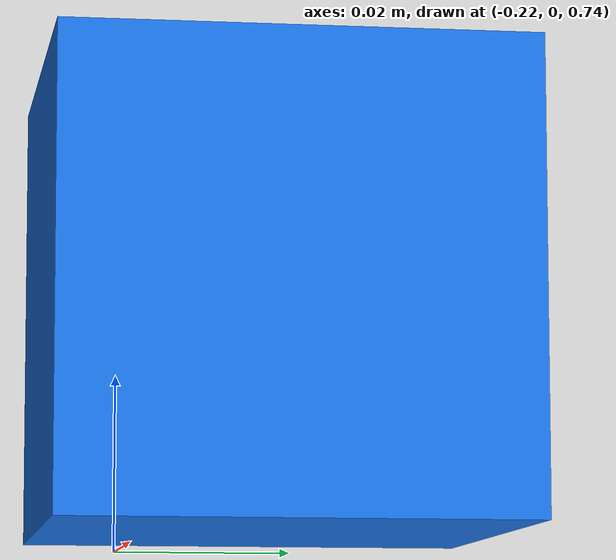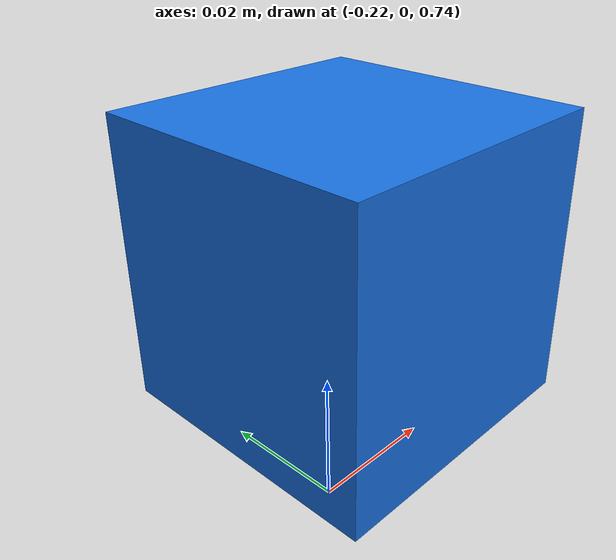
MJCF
<mujoco model="existing_settle">
  <compiler angle="radian" coordinate="local"/>
  <option gravity="0.0 0.0 -9.81" timestep="0.01"/>
  <asset>
  </asset>
  <custom><text name="agenticsim_task_contract" data="{&quot;action&quot;:{&quot;interface&quot;:&quot;zero_action&quot;,&quot;operations&quot;:[]},&quot;observation&quot;:{&quot;state&quot;:[&quot;object_pose&quot;,&quot;contact&quot;]},&quot;reset&quot;:{&quot;object_poses&quot;:&quot;mjcf_defaults&quot;},&quot;success&quot;:[{&quot;type&quot;:&quot;state_trace_available&quot;}],&quot;termination&quot;:[{&quot;steps&quot;:20,&quot;type&quot;:&quot;timeout&quot;}]}"/></custom>
  <worldbody>
    <geom name="ground" type="plane" size="3 3 0.1" rgba="0.3 0.3 0.3 1"/>
    <body name="settle_cube" pos="-0.2 0.015 0.766" quat="1 0 0 0"><freejoint name="settle_cube_free"/><geom name="settle_cube_geom" type="box" size="0.025 0.025 0.025" rgba="0.1 0.45 0.9 1"/></body>
  </worldbody>
</mujoco>
